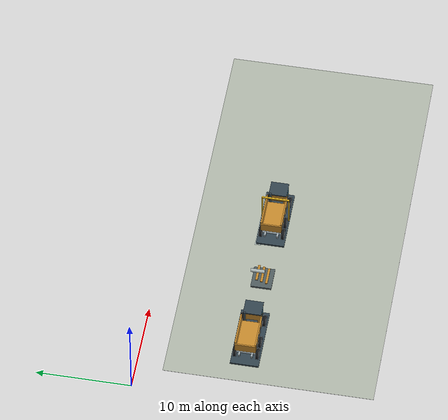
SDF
<sdf version="1.7">
 <world name="warehouse_layout_demo">
  <include><uri>model://sun</uri></include>
  <model name="se_working_floor">
   <static>true</static>
   <pose>24.0 -13.8 0.012 0 0 0</pose>
   <link name="marking">
    <visual name="visual">
     <geometry><box><size>43.0 22.0 0.012</size></box></geometry>
     <material><ambient>0.70 0.73 0.68 1</ambient><diffuse>0.70 0.73 0.68 1</diffuse></material>
    </visual>
   </link>
  </model>
  <model name="vehicle_stage_4_line_3_se">
   <static>true</static>
   <pose>8.0 -11.0 0 0 0 0</pose>
   <link name="fixture">
    <collision name="collision">
     <pose>0 0 1.9 0 0 0</pose>
     <geometry><box><size>7.0 3.0 3.8</size></box></geometry>
    </collision>
    <visual name="service_platform">
     <pose>0 0 0.11 0 0 0</pose>
     <geometry><box><size>7.0 3.0 0.22</size></box></geometry>
     <material><ambient>0.20 0.27 0.31 1</ambient><diffuse>0.20 0.27 0.31 1</diffuse></material>
    </visual>
    <visual name="chassis_rail_0">
     <pose>0 -0.66 0.85 0 0 0</pose>
     <geometry><box><size>5.9 0.19 0.28</size></box></geometry>
     <material><ambient>0.63 0.68 0.70 1</ambient><diffuse>0.63 0.68 0.70 1</diffuse></material>
    </visual>
    <visual name="haul_tire_0_0">
     <pose>-2.2 -1.18 0.63 1.57079632679 0 0</pose>
     <geometry><cylinder><radius>0.58</radius><length>0.32</length></cylinder></geometry>
     <material><ambient>0.08 0.09 0.10 1</ambient><diffuse>0.08 0.09 0.10 1</diffuse></material>
    </visual>
    <visual name="tire_hub_0_0">
     <pose>-2.2 -1.18 0.63 1.57079632679 0 0</pose>
     <geometry><cylinder><radius>0.23</radius><length>0.34</length></cylinder></geometry>
     <material><ambient>0.70 0.74 0.74 1</ambient><diffuse>0.70 0.74 0.74 1</diffuse></material>
    </visual>
    <visual name="haul_tire_0_1">
     <pose>-0.65 -1.18 0.63 1.57079632679 0 0</pose>
     <geometry><cylinder><radius>0.58</radius><length>0.32</length></cylinder></geometry>
     <material><ambient>0.08 0.09 0.10 1</ambient><diffuse>0.08 0.09 0.10 1</diffuse></material>
    </visual>
    <visual name="tire_hub_0_1">
     <pose>-0.65 -1.18 0.63 1.57079632679 0 0</pose>
     <geometry><cylinder><radius>0.23</radius><length>0.34</length></cylinder></geometry>
     <material><ambient>0.70 0.74 0.74 1</ambient><diffuse>0.70 0.74 0.74 1</diffuse></material>
    </visual>
    <visual name="haul_tire_0_2">
     <pose>2.15 -1.18 0.63 1.57079632679 0 0</pose>
     <geometry><cylinder><radius>0.58</radius><length>0.32</length></cylinder></geometry>
     <material><ambient>0.08 0.09 0.10 1</ambient><diffuse>0.08 0.09 0.10 1</diffuse></material>
    </visual>
    <visual name="tire_hub_0_2">
     <pose>2.15 -1.18 0.63 1.57079632679 0 0</pose>
     <geometry><cylinder><radius>0.23</radius><length>0.34</length></cylinder></geometry>
     <material><ambient>0.70 0.74 0.74 1</ambient><diffuse>0.70 0.74 0.74 1</diffuse></material>
    </visual>
    <visual name="chassis_rail_1">
     <pose>0 0.66 0.85 0 0 0</pose>
     <geometry><box><size>5.9 0.19 0.28</size></box></geometry>
     <material><ambient>0.63 0.68 0.70 1</ambient><diffuse>0.63 0.68 0.70 1</diffuse></material>
    </visual>
    <visual name="haul_tire_1_0">
     <pose>-2.2 1.18 0.63 1.57079632679 0 0</pose>
     <geometry><cylinder><radius>0.58</radius><length>0.32</length></cylinder></geometry>
     <material><ambient>0.08 0.09 0.10 1</ambient><diffuse>0.08 0.09 0.10 1</diffuse></material>
    </visual>
    <visual name="tire_hub_1_0">
     <pose>-2.2 1.18 0.63 1.57079632679 0 0</pose>
     <geometry><cylinder><radius>0.23</radius><length>0.34</length></cylinder></geometry>
     <material><ambient>0.70 0.74 0.74 1</ambient><diffuse>0.70 0.74 0.74 1</diffuse></material>
    </visual>
    <visual name="haul_tire_1_1">
     <pose>-0.65 1.18 0.63 1.57079632679 0 0</pose>
     <geometry><cylinder><radius>0.58</radius><length>0.32</length></cylinder></geometry>
     <material><ambient>0.08 0.09 0.10 1</ambient><diffuse>0.08 0.09 0.10 1</diffuse></material>
    </visual>
    <visual name="tire_hub_1_1">
     <pose>-0.65 1.18 0.63 1.57079632679 0 0</pose>
     <geometry><cylinder><radius>0.23</radius><length>0.34</length></cylinder></geometry>
     <material><ambient>0.70 0.74 0.74 1</ambient><diffuse>0.70 0.74 0.74 1</diffuse></material>
    </visual>
    <visual name="haul_tire_1_2">
     <pose>2.15 1.18 0.63 1.57079632679 0 0</pose>
     <geometry><cylinder><radius>0.58</radius><length>0.32</length></cylinder></geometry>
     <material><ambient>0.08 0.09 0.10 1</ambient><diffuse>0.08 0.09 0.10 1</diffuse></material>
    </visual>
    <visual name="tire_hub_1_2">
     <pose>2.15 1.18 0.63 1.57079632679 0 0</pose>
     <geometry><cylinder><radius>0.23</radius><length>0.34</length></cylinder></geometry>
     <material><ambient>0.70 0.74 0.74 1</ambient><diffuse>0.70 0.74 0.74 1</diffuse></material>
    </visual>
    <visual name="drive_axle_0">
     <pose>-2.2 0 0.68 1.57079632679 0 0</pose>
     <geometry><cylinder><radius>0.15</radius><length>2.38</length></cylinder></geometry>
     <material><ambient>0.63 0.68 0.70 1</ambient><diffuse>0.63 0.68 0.70 1</diffuse></material>
    </visual>
    <visual name="drive_axle_1">
     <pose>-0.65 0 0.68 1.57079632679 0 0</pose>
     <geometry><cylinder><radius>0.15</radius><length>2.38</length></cylinder></geometry>
     <material><ambient>0.63 0.68 0.70 1</ambient><diffuse>0.63 0.68 0.70 1</diffuse></material>
    </visual>
    <visual name="drive_axle_2">
     <pose>2.15 0 0.68 1.57079632679 0 0</pose>
     <geometry><cylinder><radius>0.15</radius><length>2.38</length></cylinder></geometry>
     <material><ambient>0.63 0.68 0.70 1</ambient><diffuse>0.63 0.68 0.70 1</diffuse></material>
    </visual>
    <visual name="diesel_engine">
     <pose>1.15 0 1.26 0 0 0</pose>
     <geometry><box><size>1.38 1.22 0.83</size></box></geometry>
     <material><ambient>0.20 0.27 0.31 1</ambient><diffuse>0.20 0.27 0.31 1</diffuse></material>
    </visual>
    <visual name="gearbox">
     <pose>0.08 0 1.12 0 0 0</pose>
     <geometry><box><size>0.82 0.76 0.6</size></box></geometry>
     <material><ambient>0.63 0.68 0.70 1</ambient><diffuse>0.63 0.68 0.70 1</diffuse></material>
    </visual>
    <visual name="radiator_fan">
     <pose>1.98 0 1.29 1.57079632679 0 0</pose>
     <geometry><cylinder><radius>0.41</radius><length>0.15</length></cylinder></geometry>
     <material><ambient>0.76 0.80 0.79 1</ambient><diffuse>0.76 0.80 0.79 1</diffuse></material>
    </visual>
    <visual name="operator_cab">
     <pose>2.08 0 1.82 0 0 0</pose>
     <geometry><box><size>1.6 1.83 1.62</size></box></geometry>
     <material><ambient>0.79 0.55 0.18 1</ambient><diffuse>0.79 0.55 0.18 1</diffuse></material>
    </visual>
    <visual name="cab_roof">
     <pose>2.08 0 2.66 0 0 0</pose>
     <geometry><box><size>1.72 1.91 0.14</size></box></geometry>
     <material><ambient>0.20 0.27 0.31 1</ambient><diffuse>0.20 0.27 0.31 1</diffuse></material>
    </visual>
    <visual name="windshield">
     <pose>2.91 0 2.03 0 0 0</pose>
     <geometry><box><size>0.045 1.48 0.91</size></box></geometry>
     <material><ambient>0.17 0.38 0.48 1</ambient><diffuse>0.17 0.38 0.48 1</diffuse></material>
    </visual>
    <visual name="exhaust_stack">
     <pose>1.14 0.76 2.15 0.0 0 0</pose>
     <geometry><cylinder><radius>0.12</radius><length>1.57</length></cylinder></geometry>
     <material><ambient>0.20 0.27 0.31 1</ambient><diffuse>0.20 0.27 0.31 1</diffuse></material>
    </visual>
    <visual name="cab_side_glass_0">
     <pose>2.11 -0.95 2.08 0 0 0</pose>
     <geometry><box><size>0.87 0.035 0.76</size></box></geometry>
     <material><ambient>0.17 0.38 0.48 1</ambient><diffuse>0.17 0.38 0.48 1</diffuse></material>
    </visual>
    <visual name="cab_side_glass_1">
     <pose>2.11 0.95 2.08 0 0 0</pose>
     <geometry><box><size>0.87 0.035 0.76</size></box></geometry>
     <material><ambient>0.17 0.38 0.48 1</ambient><diffuse>0.17 0.38 0.48 1</diffuse></material>
    </visual>
    <visual name="dump_bed_floor">
     <pose>-1.01 0 1.78 0 0 0</pose>
     <geometry><box><size>3.75 2.15 0.22</size></box></geometry>
     <material><ambient>0.79 0.55 0.18 1</ambient><diffuse>0.79 0.55 0.18 1</diffuse></material>
    </visual>
    <visual name="dump_bed_side_0">
     <pose>-1.01 -1.05 2.37 0 0 0</pose>
     <geometry><box><size>3.75 0.15 1.15</size></box></geometry>
     <material><ambient>0.79 0.55 0.18 1</ambient><diffuse>0.79 0.55 0.18 1</diffuse></material>
    </visual>
    <visual name="bed_rib_0_0">
     <pose>-2.46 -1.1235000000000002 2.37 0 0 0</pose>
     <geometry><box><size>0.13 0.08 1.1</size></box></geometry>
     <material><ambient>0.63 0.68 0.70 1</ambient><diffuse>0.63 0.68 0.70 1</diffuse></material>
    </visual>
    <visual name="bed_rib_0_1">
     <pose>-1.39 -1.1235000000000002 2.37 0 0 0</pose>
     <geometry><box><size>0.13 0.08 1.1</size></box></geometry>
     <material><ambient>0.63 0.68 0.70 1</ambient><diffuse>0.63 0.68 0.70 1</diffuse></material>
    </visual>
    <visual name="bed_rib_0_2">
     <pose>-0.32 -1.1235000000000002 2.37 0 0 0</pose>
     <geometry><box><size>0.13 0.08 1.1</size></box></geometry>
     <material><ambient>0.63 0.68 0.70 1</ambient><diffuse>0.63 0.68 0.70 1</diffuse></material>
    </visual>
    <visual name="bed_rib_0_3">
     <pose>0.75 -1.1235000000000002 2.37 0 0 0</pose>
     <geometry><box><size>0.13 0.08 1.1</size></box></geometry>
     <material><ambient>0.63 0.68 0.70 1</ambient><diffuse>0.63 0.68 0.70 1</diffuse></material>
    </visual>
    <visual name="dump_bed_side_1">
     <pose>-1.01 1.05 2.37 0 0 0</pose>
     <geometry><box><size>3.75 0.15 1.15</size></box></geometry>
     <material><ambient>0.79 0.55 0.18 1</ambient><diffuse>0.79 0.55 0.18 1</diffuse></material>
    </visual>
    <visual name="bed_rib_1_0">
     <pose>-2.46 1.1235000000000002 2.37 0 0 0</pose>
     <geometry><box><size>0.13 0.08 1.1</size></box></geometry>
     <material><ambient>0.63 0.68 0.70 1</ambient><diffuse>0.63 0.68 0.70 1</diffuse></material>
    </visual>
    <visual name="bed_rib_1_1">
     <pose>-1.39 1.1235000000000002 2.37 0 0 0</pose>
     <geometry><box><size>0.13 0.08 1.1</size></box></geometry>
     <material><ambient>0.63 0.68 0.70 1</ambient><diffuse>0.63 0.68 0.70 1</diffuse></material>
    </visual>
    <visual name="bed_rib_1_2">
     <pose>-0.32 1.1235000000000002 2.37 0 0 0</pose>
     <geometry><box><size>0.13 0.08 1.1</size></box></geometry>
     <material><ambient>0.63 0.68 0.70 1</ambient><diffuse>0.63 0.68 0.70 1</diffuse></material>
    </visual>
    <visual name="bed_rib_1_3">
     <pose>0.75 1.1235000000000002 2.37 0 0 0</pose>
     <geometry><box><size>0.13 0.08 1.1</size></box></geometry>
     <material><ambient>0.63 0.68 0.70 1</ambient><diffuse>0.63 0.68 0.70 1</diffuse></material>
    </visual>
    <visual name="rear_gate">
     <pose>-2.93 0 2.29 0 0 0</pose>
     <geometry><box><size>0.15 2.2 1.0</size></box></geometry>
     <material><ambient>0.79 0.55 0.18 1</ambient><diffuse>0.79 0.55 0.18 1</diffuse></material>
    </visual>
    <visual name="hydraulic_lift_left">
     <pose>-0.78 -0.48 1.37 0.0 0 0</pose>
     <geometry><cylinder><radius>0.18</radius><length>1.0</length></cylinder></geometry>
     <material><ambient>0.63 0.68 0.70 1</ambient><diffuse>0.63 0.68 0.70 1</diffuse></material>
    </visual>
    <visual name="hydraulic_lift_right">
     <pose>-0.78 0.48 1.37 0.0 0 0</pose>
     <geometry><cylinder><radius>0.18</radius><length>1.0</length></cylinder></geometry>
     <material><ambient>0.63 0.68 0.70 1</ambient><diffuse>0.63 0.68 0.70 1</diffuse></material>
    </visual>
   </link>
  </model>
  <model name="vehicle_stage_5_line_3_se_pad">
   <static>true</static>
   <pose>24.0 -11.0 0.012 0 0 0</pose>
   <link name="marking">
    <visual name="visual">
     <geometry><box><size>7.2 3.2 0.012</size></box></geometry>
     <material><ambient>0.72 0.79 0.78 1</ambient><diffuse>0.72 0.79 0.78 1</diffuse></material>
    </visual>
   </link>
  </model>
  <model name="vehicle_stage_5_line_3_se">
   <static>true</static>
   <pose>24.0 -11.0 0 0 0 0</pose>
   <link name="fixture">
    <collision name="collision">
     <pose>0 0 1.9 0 0 0</pose>
     <geometry><box><size>7.0 3.0 3.8</size></box></geometry>
    </collision>
    <visual name="service_platform">
     <pose>0 0 0.11 0 0 0</pose>
     <geometry><box><size>7.0 3.0 0.22</size></box></geometry>
     <material><ambient>0.20 0.27 0.31 1</ambient><diffuse>0.20 0.27 0.31 1</diffuse></material>
    </visual>
    <visual name="chassis_rail_0">
     <pose>0 -0.66 0.85 0 0 0</pose>
     <geometry><box><size>5.9 0.19 0.28</size></box></geometry>
     <material><ambient>0.63 0.68 0.70 1</ambient><diffuse>0.63 0.68 0.70 1</diffuse></material>
    </visual>
    <visual name="haul_tire_0_0">
     <pose>-2.2 -1.18 0.63 1.57079632679 0 0</pose>
     <geometry><cylinder><radius>0.58</radius><length>0.32</length></cylinder></geometry>
     <material><ambient>0.08 0.09 0.10 1</ambient><diffuse>0.08 0.09 0.10 1</diffuse></material>
    </visual>
    <visual name="tire_hub_0_0">
     <pose>-2.2 -1.18 0.63 1.57079632679 0 0</pose>
     <geometry><cylinder><radius>0.23</radius><length>0.34</length></cylinder></geometry>
     <material><ambient>0.70 0.74 0.74 1</ambient><diffuse>0.70 0.74 0.74 1</diffuse></material>
    </visual>
    <visual name="haul_tire_0_1">
     <pose>-0.65 -1.18 0.63 1.57079632679 0 0</pose>
     <geometry><cylinder><radius>0.58</radius><length>0.32</length></cylinder></geometry>
     <material><ambient>0.08 0.09 0.10 1</ambient><diffuse>0.08 0.09 0.10 1</diffuse></material>
    </visual>
    <visual name="tire_hub_0_1">
     <pose>-0.65 -1.18 0.63 1.57079632679 0 0</pose>
     <geometry><cylinder><radius>0.23</radius><length>0.34</length></cylinder></geometry>
     <material><ambient>0.70 0.74 0.74 1</ambient><diffuse>0.70 0.74 0.74 1</diffuse></material>
    </visual>
    <visual name="haul_tire_0_2">
     <pose>2.15 -1.18 0.63 1.57079632679 0 0</pose>
     <geometry><cylinder><radius>0.58</radius><length>0.32</length></cylinder></geometry>
     <material><ambient>0.08 0.09 0.10 1</ambient><diffuse>0.08 0.09 0.10 1</diffuse></material>
    </visual>
    <visual name="tire_hub_0_2">
     <pose>2.15 -1.18 0.63 1.57079632679 0 0</pose>
     <geometry><cylinder><radius>0.23</radius><length>0.34</length></cylinder></geometry>
     <material><ambient>0.70 0.74 0.74 1</ambient><diffuse>0.70 0.74 0.74 1</diffuse></material>
    </visual>
    <visual name="chassis_rail_1">
     <pose>0 0.66 0.85 0 0 0</pose>
     <geometry><box><size>5.9 0.19 0.28</size></box></geometry>
     <material><ambient>0.63 0.68 0.70 1</ambient><diffuse>0.63 0.68 0.70 1</diffuse></material>
    </visual>
    <visual name="haul_tire_1_0">
     <pose>-2.2 1.18 0.63 1.57079632679 0 0</pose>
     <geometry><cylinder><radius>0.58</radius><length>0.32</length></cylinder></geometry>
     <material><ambient>0.08 0.09 0.10 1</ambient><diffuse>0.08 0.09 0.10 1</diffuse></material>
    </visual>
    <visual name="tire_hub_1_0">
     <pose>-2.2 1.18 0.63 1.57079632679 0 0</pose>
     <geometry><cylinder><radius>0.23</radius><length>0.34</length></cylinder></geometry>
     <material><ambient>0.70 0.74 0.74 1</ambient><diffuse>0.70 0.74 0.74 1</diffuse></material>
    </visual>
    <visual name="haul_tire_1_1">
     <pose>-0.65 1.18 0.63 1.57079632679 0 0</pose>
     <geometry><cylinder><radius>0.58</radius><length>0.32</length></cylinder></geometry>
     <material><ambient>0.08 0.09 0.10 1</ambient><diffuse>0.08 0.09 0.10 1</diffuse></material>
    </visual>
    <visual name="tire_hub_1_1">
     <pose>-0.65 1.18 0.63 1.57079632679 0 0</pose>
     <geometry><cylinder><radius>0.23</radius><length>0.34</length></cylinder></geometry>
     <material><ambient>0.70 0.74 0.74 1</ambient><diffuse>0.70 0.74 0.74 1</diffuse></material>
    </visual>
    <visual name="haul_tire_1_2">
     <pose>2.15 1.18 0.63 1.57079632679 0 0</pose>
     <geometry><cylinder><radius>0.58</radius><length>0.32</length></cylinder></geometry>
     <material><ambient>0.08 0.09 0.10 1</ambient><diffuse>0.08 0.09 0.10 1</diffuse></material>
    </visual>
    <visual name="tire_hub_1_2">
     <pose>2.15 1.18 0.63 1.57079632679 0 0</pose>
     <geometry><cylinder><radius>0.23</radius><length>0.34</length></cylinder></geometry>
     <material><ambient>0.70 0.74 0.74 1</ambient><diffuse>0.70 0.74 0.74 1</diffuse></material>
    </visual>
    <visual name="drive_axle_0">
     <pose>-2.2 0 0.68 1.57079632679 0 0</pose>
     <geometry><cylinder><radius>0.15</radius><length>2.38</length></cylinder></geometry>
     <material><ambient>0.63 0.68 0.70 1</ambient><diffuse>0.63 0.68 0.70 1</diffuse></material>
    </visual>
    <visual name="drive_axle_1">
     <pose>-0.65 0 0.68 1.57079632679 0 0</pose>
     <geometry><cylinder><radius>0.15</radius><length>2.38</length></cylinder></geometry>
     <material><ambient>0.63 0.68 0.70 1</ambient><diffuse>0.63 0.68 0.70 1</diffuse></material>
    </visual>
    <visual name="drive_axle_2">
     <pose>2.15 0 0.68 1.57079632679 0 0</pose>
     <geometry><cylinder><radius>0.15</radius><length>2.38</length></cylinder></geometry>
     <material><ambient>0.63 0.68 0.70 1</ambient><diffuse>0.63 0.68 0.70 1</diffuse></material>
    </visual>
    <visual name="diesel_engine">
     <pose>1.15 0 1.26 0 0 0</pose>
     <geometry><box><size>1.38 1.22 0.83</size></box></geometry>
     <material><ambient>0.20 0.27 0.31 1</ambient><diffuse>0.20 0.27 0.31 1</diffuse></material>
    </visual>
    <visual name="gearbox">
     <pose>0.08 0 1.12 0 0 0</pose>
     <geometry><box><size>0.82 0.76 0.6</size></box></geometry>
     <material><ambient>0.63 0.68 0.70 1</ambient><diffuse>0.63 0.68 0.70 1</diffuse></material>
    </visual>
    <visual name="radiator_fan">
     <pose>1.98 0 1.29 1.57079632679 0 0</pose>
     <geometry><cylinder><radius>0.41</radius><length>0.15</length></cylinder></geometry>
     <material><ambient>0.76 0.80 0.79 1</ambient><diffuse>0.76 0.80 0.79 1</diffuse></material>
    </visual>
    <visual name="operator_cab">
     <pose>2.08 0 1.82 0 0 0</pose>
     <geometry><box><size>1.6 1.83 1.62</size></box></geometry>
     <material><ambient>0.79 0.55 0.18 1</ambient><diffuse>0.79 0.55 0.18 1</diffuse></material>
    </visual>
    <visual name="cab_roof">
     <pose>2.08 0 2.66 0 0 0</pose>
     <geometry><box><size>1.72 1.91 0.14</size></box></geometry>
     <material><ambient>0.20 0.27 0.31 1</ambient><diffuse>0.20 0.27 0.31 1</diffuse></material>
    </visual>
    <visual name="windshield">
     <pose>2.91 0 2.03 0 0 0</pose>
     <geometry><box><size>0.045 1.48 0.91</size></box></geometry>
     <material><ambient>0.17 0.38 0.48 1</ambient><diffuse>0.17 0.38 0.48 1</diffuse></material>
    </visual>
    <visual name="exhaust_stack">
     <pose>1.14 0.76 2.15 0.0 0 0</pose>
     <geometry><cylinder><radius>0.12</radius><length>1.57</length></cylinder></geometry>
     <material><ambient>0.20 0.27 0.31 1</ambient><diffuse>0.20 0.27 0.31 1</diffuse></material>
    </visual>
    <visual name="cab_side_glass_0">
     <pose>2.11 -0.95 2.08 0 0 0</pose>
     <geometry><box><size>0.87 0.035 0.76</size></box></geometry>
     <material><ambient>0.17 0.38 0.48 1</ambient><diffuse>0.17 0.38 0.48 1</diffuse></material>
    </visual>
    <visual name="cab_side_glass_1">
     <pose>2.11 0.95 2.08 0 0 0</pose>
     <geometry><box><size>0.87 0.035 0.76</size></box></geometry>
     <material><ambient>0.17 0.38 0.48 1</ambient><diffuse>0.17 0.38 0.48 1</diffuse></material>
    </visual>
    <visual name="dump_bed_floor">
     <pose>-1.01 0 1.78 0 0 0</pose>
     <geometry><box><size>3.75 2.15 0.22</size></box></geometry>
     <material><ambient>0.79 0.55 0.18 1</ambient><diffuse>0.79 0.55 0.18 1</diffuse></material>
    </visual>
    <visual name="dump_bed_side_0">
     <pose>-1.01 -1.05 2.37 0 0 0</pose>
     <geometry><box><size>3.75 0.15 1.15</size></box></geometry>
     <material><ambient>0.79 0.55 0.18 1</ambient><diffuse>0.79 0.55 0.18 1</diffuse></material>
    </visual>
    <visual name="bed_rib_0_0">
     <pose>-2.46 -1.1235000000000002 2.37 0 0 0</pose>
     <geometry><box><size>0.13 0.08 1.1</size></box></geometry>
     <material><ambient>0.63 0.68 0.70 1</ambient><diffuse>0.63 0.68 0.70 1</diffuse></material>
    </visual>
    <visual name="bed_rib_0_1">
     <pose>-1.39 -1.1235000000000002 2.37 0 0 0</pose>
     <geometry><box><size>0.13 0.08 1.1</size></box></geometry>
     <material><ambient>0.63 0.68 0.70 1</ambient><diffuse>0.63 0.68 0.70 1</diffuse></material>
    </visual>
    <visual name="bed_rib_0_2">
     <pose>-0.32 -1.1235000000000002 2.37 0 0 0</pose>
     <geometry><box><size>0.13 0.08 1.1</size></box></geometry>
     <material><ambient>0.63 0.68 0.70 1</ambient><diffuse>0.63 0.68 0.70 1</diffuse></material>
    </visual>
    <visual name="bed_rib_0_3">
     <pose>0.75 -1.1235000000000002 2.37 0 0 0</pose>
     <geometry><box><size>0.13 0.08 1.1</size></box></geometry>
     <material><ambient>0.63 0.68 0.70 1</ambient><diffuse>0.63 0.68 0.70 1</diffuse></material>
    </visual>
    <visual name="dump_bed_side_1">
     <pose>-1.01 1.05 2.37 0 0 0</pose>
     <geometry><box><size>3.75 0.15 1.15</size></box></geometry>
     <material><ambient>0.79 0.55 0.18 1</ambient><diffuse>0.79 0.55 0.18 1</diffuse></material>
    </visual>
    <visual name="bed_rib_1_0">
     <pose>-2.46 1.1235000000000002 2.37 0 0 0</pose>
     <geometry><box><size>0.13 0.08 1.1</size></box></geometry>
     <material><ambient>0.63 0.68 0.70 1</ambient><diffuse>0.63 0.68 0.70 1</diffuse></material>
    </visual>
    <visual name="bed_rib_1_1">
     <pose>-1.39 1.1235000000000002 2.37 0 0 0</pose>
     <geometry><box><size>0.13 0.08 1.1</size></box></geometry>
     <material><ambient>0.63 0.68 0.70 1</ambient><diffuse>0.63 0.68 0.70 1</diffuse></material>
    </visual>
    <visual name="bed_rib_1_2">
     <pose>-0.32 1.1235000000000002 2.37 0 0 0</pose>
     <geometry><box><size>0.13 0.08 1.1</size></box></geometry>
     <material><ambient>0.63 0.68 0.70 1</ambient><diffuse>0.63 0.68 0.70 1</diffuse></material>
    </visual>
    <visual name="bed_rib_1_3">
     <pose>0.75 1.1235000000000002 2.37 0 0 0</pose>
     <geometry><box><size>0.13 0.08 1.1</size></box></geometry>
     <material><ambient>0.63 0.68 0.70 1</ambient><diffuse>0.63 0.68 0.70 1</diffuse></material>
    </visual>
    <visual name="rear_gate">
     <pose>-2.93 0 2.29 0 0 0</pose>
     <geometry><box><size>0.15 2.2 1.0</size></box></geometry>
     <material><ambient>0.79 0.55 0.18 1</ambient><diffuse>0.79 0.55 0.18 1</diffuse></material>
    </visual>
    <visual name="hydraulic_lift_left">
     <pose>-0.78 -0.48 1.37 0.0 0 0</pose>
     <geometry><cylinder><radius>0.18</radius><length>1.0</length></cylinder></geometry>
     <material><ambient>0.63 0.68 0.70 1</ambient><diffuse>0.63 0.68 0.70 1</diffuse></material>
    </visual>
    <visual name="hydraulic_lift_right">
     <pose>-0.78 0.48 1.37 0.0 0 0</pose>
     <geometry><cylinder><radius>0.18</radius><length>1.0</length></cylinder></geometry>
     <material><ambient>0.63 0.68 0.70 1</ambient><diffuse>0.63 0.68 0.70 1</diffuse></material>
    </visual>
    <visual name="test_gantry_post_0">
     <pose>0 -1.42 1.86 0 0 0</pose>
     <geometry><box><size>0.13 0.13 3.52</size></box></geometry>
     <material><ambient>0.91 0.72 0.12 1</ambient><diffuse>0.91 0.72 0.12 1</diffuse></material>
    </visual>
    <visual name="test_gantry_post_1">
     <pose>0 1.42 1.86 0 0 0</pose>
     <geometry><box><size>0.13 0.13 3.52</size></box></geometry>
     <material><ambient>0.91 0.72 0.12 1</ambient><diffuse>0.91 0.72 0.12 1</diffuse></material>
    </visual>
    <visual name="test_gantry_beam">
     <pose>0 0 3.59 0 0 0</pose>
     <geometry><box><size>0.18 2.86 0.13</size></box></geometry>
     <material><ambient>0.91 0.72 0.12 1</ambient><diffuse>0.91 0.72 0.12 1</diffuse></material>
    </visual>
   </link>
  </model>
  <model name="assembly_kit_1_line_3_se_pad">
   <static>true</static>
   <pose>16.0 -11.0 0.012 0 0 0</pose>
   <link name="marking">
    <visual name="visual">
     <geometry><box><size>2.8000000000000003 2.4000000000000004 0.012</size></box></geometry>
     <material><ambient>0.72 0.79 0.78 1</ambient><diffuse>0.72 0.79 0.78 1</diffuse></material>
    </visual>
   </link>
  </model>
  <model name="assembly_kit_1_line_3_se">
   <static>true</static>
   <pose>16.0 -11.0 0 0 0 0</pose>
   <link name="fixture">
    <collision name="collision">
     <pose>0 0 0.95 0 0 0</pose>
     <geometry><box><size>2.6 2.2 1.9</size></box></geometry>
    </collision>
    <visual name="kit_frame">
     <pose>0 0 0.12 0 0 0</pose>
     <geometry><box><size>2.6 2.2 0.24</size></box></geometry>
     <material><ambient>0.32 0.37 0.38 1</ambient><diffuse>0.32 0.37 0.38 1</diffuse></material>
    </visual>
    <visual name="bed_panel_0">
     <pose>0 -0.52 0.58 0 0 0</pose>
     <geometry><box><size>1.96 0.24 0.13</size></box></geometry>
     <material><ambient>0.79 0.55 0.18 1</ambient><diffuse>0.79 0.55 0.18 1</diffuse></material>
    </visual>
    <visual name="bed_panel_1">
     <pose>0 0 0.78 0 0 0</pose>
     <geometry><box><size>1.96 0.24 0.13</size></box></geometry>
     <material><ambient>0.79 0.55 0.18 1</ambient><diffuse>0.79 0.55 0.18 1</diffuse></material>
    </visual>
    <visual name="bed_panel_2">
     <pose>0 0.52 0.98 0 0 0</pose>
     <geometry><box><size>1.96 0.24 0.13</size></box></geometry>
     <material><ambient>0.79 0.55 0.18 1</ambient><diffuse>0.79 0.55 0.18 1</diffuse></material>
    </visual>
    <visual name="lift_ram">
     <pose>0 0.54 1.28 1.57079632679 0 0</pose>
     <geometry><cylinder><radius>0.19</radius><length>1.5</length></cylinder></geometry>
     <material><ambient>0.69 0.73 0.72 1</ambient><diffuse>0.69 0.73 0.72 1</diffuse></material>
    </visual>
   </link>
  </model>
 </world>
</sdf>
